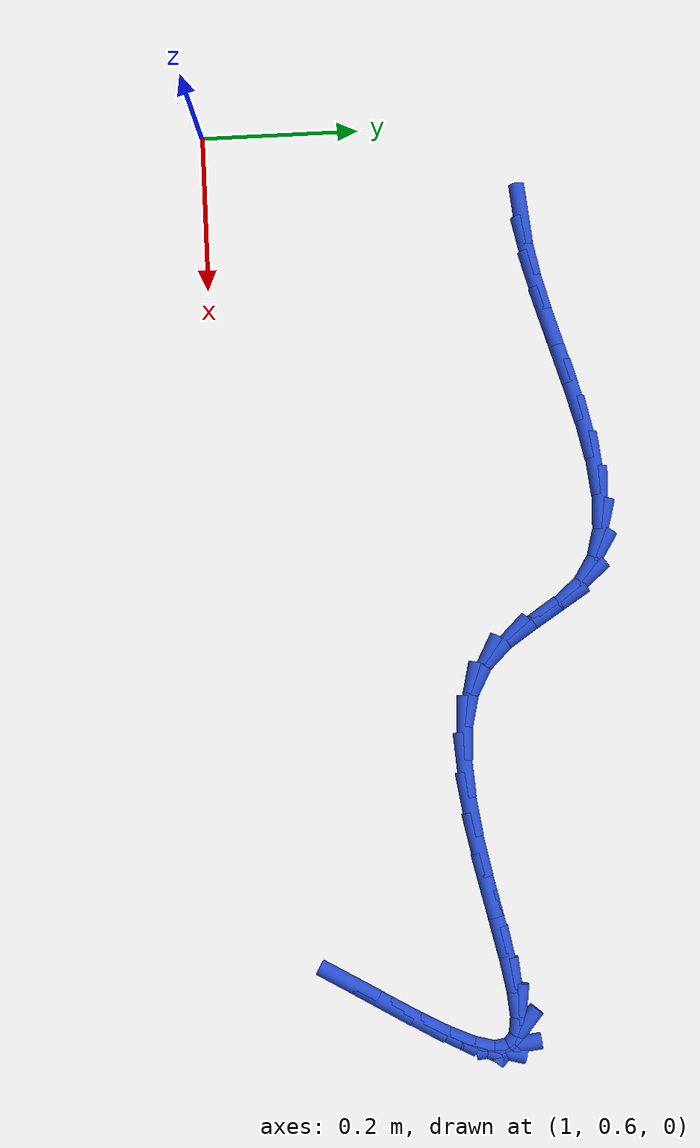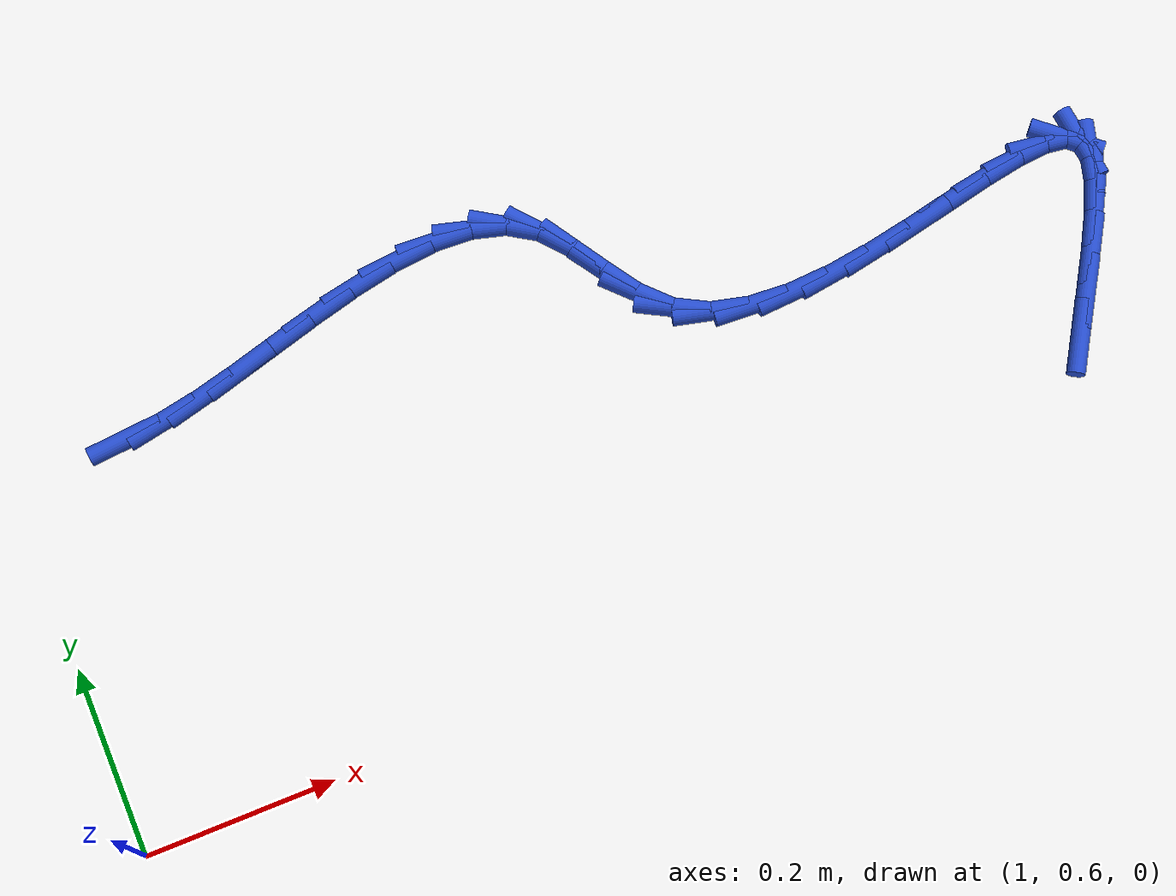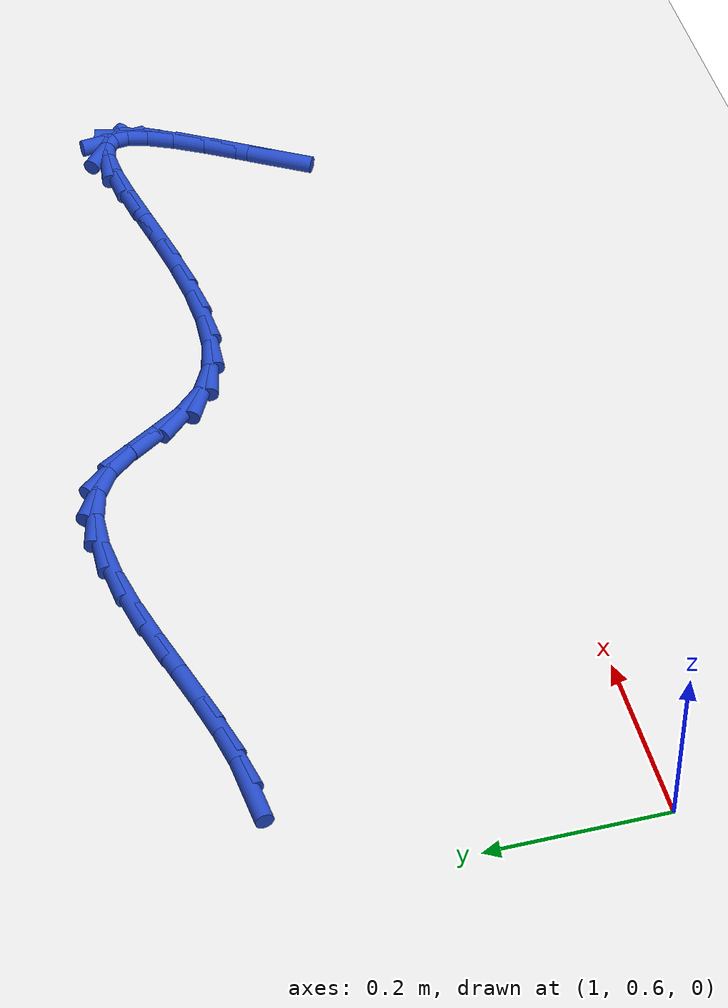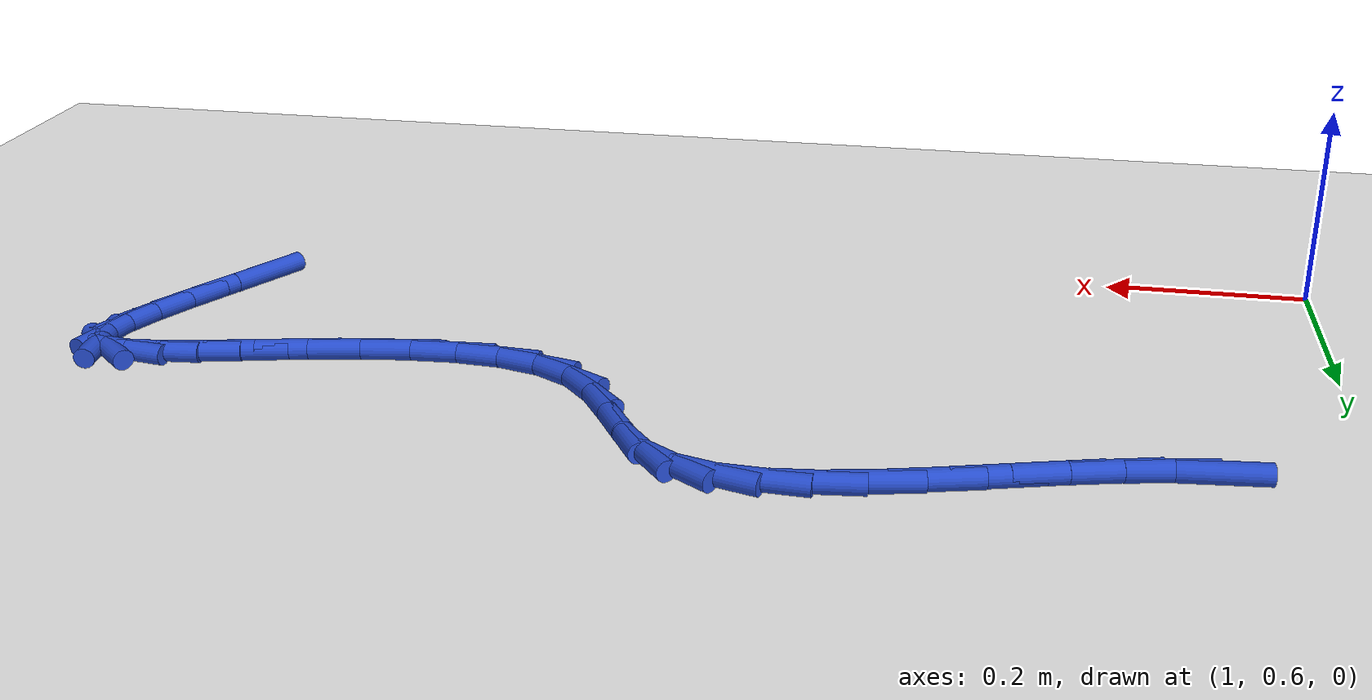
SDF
<sdf version="1.6">
 <world name="default">
  <model name="ground_plane">
   <static>1</static>
   <link name="link">
    <collision name="collision">
     <geometry><plane><normal>0 0 1</normal><size>100 100</size></plane></geometry>
     <surface><friction><ode><mu>100</mu><mu2>50</mu2></ode></friction></surface>
    </collision>
    <visual name="visual">
     <cast_shadows>0</cast_shadows>
     <geometry><plane><normal>0 0 1</normal><size>100 100</size></plane></geometry>
     <material>
      <script><uri>file://media/materials/scripts/gazebo.material</uri><name>Gazebo/WhiteGlow</name></script>
     </material>
    </visual>
   </link>
  </model>
  <model name="line">
   <link name="link_49">
    <pose>1.1250868154698648 1.0018275350249255 0.01 0 1.57 0.0902517305781408</pose>
    <collision name="collision">
     <geometry><cylinder><radius>0.01</radius><length>0.08</length></cylinder></geometry>
    </collision>
    <visual name="visual">
     <material>
      <script><name>Gazebo/Blue</name><uri>file://media/materials/scripts/gazebo.material</uri></script>
     </material>
     <geometry><cylinder><radius>0.01</radius><length>0.08</length></cylinder></geometry>
    </visual>
   </link>
   <link name="link_50">
    <pose>1.1665355438896647 1.0055785444891976 0.01 0 1.57 0.19057502289999953</pose>
    <collision name="collision">
     <geometry><cylinder><radius>0.01</radius><length>0.08</length></cylinder></geometry>
    </collision>
    <visual name="visual">
     <material>
      <script><name>Gazebo/Blue</name><uri>file://media/materials/scripts/gazebo.material</uri></script>
     </material>
     <geometry><cylinder><radius>0.01</radius><length>0.08</length></cylinder></geometry>
    </visual>
   </link>
   <link name="link_51">
    <pose>1.2111606601448308 1.0141874521095293 0.01 0 1.57 0.2484115049144183</pose>
    <collision name="collision">
     <geometry><cylinder><radius>0.01</radius><length>0.08</length></cylinder></geometry>
    </collision>
    <visual name="visual">
     <material>
      <script><name>Gazebo/Blue</name><uri>file://media/materials/scripts/gazebo.material</uri></script>
     </material>
     <geometry><cylinder><radius>0.01</radius><length>0.08</length></cylinder></geometry>
    </visual>
   </link>
   <link name="link_52">
    <pose>1.258002972986778 1.0260690301350635 0.01 0 1.57 0.27495344594959714</pose>
    <collision name="collision">
     <geometry><cylinder><radius>0.01</radius><length>0.08</length></cylinder></geometry>
    </collision>
    <visual name="visual">
     <material>
      <script><name>Gazebo/Blue</name><uri>file://media/materials/scripts/gazebo.material</uri></script>
     </material>
     <geometry><cylinder><radius>0.01</radius><length>0.08</length></cylinder></geometry>
    </visual>
   </link>
   <link name="link_53">
    <pose>1.3061032911669226 1.0396380508149439 0.01 0 1.57 0.27529637345718416</pose>
    <collision name="collision">
     <geometry><cylinder><radius>0.01</radius><length>0.08</length></cylinder></geometry>
    </collision>
    <visual name="visual">
     <material>
      <script><name>Gazebo/Blue</name><uri>file://media/materials/scripts/gazebo.material</uri></script>
     </material>
     <geometry><cylinder><radius>0.01</radius><length>0.08</length></cylinder></geometry>
    </visual>
   </link>
   <link name="link_54">
    <pose>1.3545024234366798 1.053309286398314 0.01 0 1.57 0.249970842008268</pose>
    <collision name="collision">
     <geometry><cylinder><radius>0.01</radius><length>0.08</length></cylinder></geometry>
    </collision>
    <visual name="visual">
     <material>
      <script><name>Gazebo/Blue</name><uri>file://media/materials/scripts/gazebo.material</uri></script>
     </material>
     <geometry><cylinder><radius>0.01</radius><length>0.08</length></cylinder></geometry>
    </visual>
   </link>
   <link name="link_55">
    <pose>1.4022411785474655 1.065497509134317 0.01 0 1.57 0.19522934906371991</pose>
    <collision name="collision">
     <geometry><cylinder><radius>0.01</radius><length>0.08</length></cylinder></geometry>
    </collision>
    <visual name="visual">
     <material>
      <script><name>Gazebo/Blue</name><uri>file://media/materials/scripts/gazebo.material</uri></script>
     </material>
     <geometry><cylinder><radius>0.01</radius><length>0.08</length></cylinder></geometry>
    </visual>
   </link>
   <link name="link_56">
    <pose>1.4483603652506947 1.0746174912720963 0.01 0 1.57 0.10222555881255425</pose>
    <collision name="collision">
     <geometry><cylinder><radius>0.01</radius><length>0.08</length></cylinder></geometry>
    </collision>
    <visual name="visual">
     <material>
      <script><name>Gazebo/Blue</name><uri>file://media/materials/scripts/gazebo.material</uri></script>
     </material>
     <geometry><cylinder><radius>0.01</radius><length>0.08</length></cylinder></geometry>
    </visual>
   </link>
   <link name="link_57">
    <pose>1.4919007922977832 1.0790840050607955 0.01 0 1.57 -0.04427286642482377</pose>
    <collision name="collision">
     <geometry><cylinder><radius>0.01</radius><length>0.08</length></cylinder></geometry>
    </collision>
    <visual name="visual">
     <material>
      <script><name>Gazebo/Blue</name><uri>file://media/materials/scripts/gazebo.material</uri></script>
     </material>
     <geometry><cylinder><radius>0.01</radius><length>0.08</length></cylinder></geometry>
    </visual>
   </link>
   <link name="link_58">
    <pose>1.5319032684401468 1.077311822749558 0.01 0 1.57 -0.26396555960565266</pose>
    <collision name="collision">
     <geometry><cylinder><radius>0.01</radius><length>0.08</length></cylinder></geometry>
    </collision>
    <visual name="visual">
     <material>
      <script><name>Gazebo/Blue</name><uri>file://media/materials/scripts/gazebo.material</uri></script>
     </material>
     <geometry><cylinder><radius>0.01</radius><length>0.08</length></cylinder></geometry>
    </visual>
   </link>
   <link name="link_59">
    <pose>1.567408602429201 1.0677157165875273 0.01 0 1.57 -0.5639569300416017</pose>
    <collision name="collision">
     <geometry><cylinder><radius>0.01</radius><length>0.08</length></cylinder></geometry>
    </collision>
    <visual name="visual">
     <material>
      <script><name>Gazebo/Blue</name><uri>file://media/materials/scripts/gazebo.material</uri></script>
     </material>
     <geometry><cylinder><radius>0.01</radius><length>0.08</length></cylinder></geometry>
    </visual>
   </link>
   <link name="link_60">
    <pose>1.5974576030163616 1.048710458823846 0.01 0 1.57 -0.8688384375488674</pose>
    <collision name="collision">
     <geometry><cylinder><radius>0.01</radius><length>0.08</length></cylinder></geometry>
    </collision>
    <visual name="visual">
     <material>
      <script><name>Gazebo/Blue</name><uri>file://media/materials/scripts/gazebo.material</uri></script>
     </material>
     <geometry><cylinder><radius>0.01</radius><length>0.08</length></cylinder></geometry>
    </visual>
   </link>
   <link name="link_61">
    <pose>1.621846457739842 1.0198697808917465 0.01 0 1.57 -1.0075575633804947</pose>
    <collision name="collision">
     <geometry><cylinder><radius>0.01</radius><length>0.08</length></cylinder></geometry>
    </collision>
    <visual name="visual">
     <material>
      <script><name>Gazebo/Blue</name><uri>file://media/materials/scripts/gazebo.material</uri></script>
     </material>
     <geometry><cylinder><radius>0.01</radius><length>0.08</length></cylinder></geometry>
    </visual>
   </link>
   <link name="link_62">
    <pose>1.6435036886910224 0.9855732784630096 0.01 0 1.57 -0.9845311564287268</pose>
    <collision name="collision">
     <geometry><cylinder><radius>0.01</radius><length>0.08</length></cylinder></geometry>
    </collision>
    <visual name="visual">
     <material>
      <script><name>Gazebo/Blue</name><uri>file://media/materials/scripts/gazebo.material</uri></script>
     </material>
     <geometry><cylinder><radius>0.01</radius><length>0.08</length></cylinder></geometry>
    </visual>
   </link>
   <link name="link_63">
    <pose>1.666169615058855 0.951446067626839 0.01 0 1.57 -0.8019436208430275</pose>
    <collision name="collision">
     <geometry><cylinder><radius>0.01</radius><length>0.08</length></cylinder></geometry>
    </collision>
    <visual name="visual">
     <material>
      <script><name>Gazebo/Blue</name><uri>file://media/materials/scripts/gazebo.material</uri></script>
     </material>
     <geometry><cylinder><radius>0.01</radius><length>0.08</length></cylinder></geometry>
    </visual>
   </link>
   <link name="link_64">
    <pose>1.6935825939955085 0.9231106213152334 0.01 0 1.57 -0.49427795770208377</pose>
    <collision name="collision">
     <geometry><cylinder><radius>0.01</radius><length>0.08</length></cylinder></geometry>
    </collision>
    <visual name="visual">
     <material>
      <script><name>Gazebo/Blue</name><uri>file://media/materials/scripts/gazebo.material</uri></script>
     </material>
     <geometry><cylinder><radius>0.01</radius><length>0.08</length></cylinder></geometry>
    </visual>
   </link>
   <link name="link_65">
    <pose>1.7281956923925312 0.9044577680749949 0.01 0 1.57 -0.23584991319914753</pose>
    <collision name="collision">
     <geometry><cylinder><radius>0.01</radius><length>0.08</length></cylinder></geometry>
    </collision>
    <visual name="visual">
     <material>
      <script><name>Gazebo/Blue</name><uri>file://media/materials/scripts/gazebo.material</uri></script>
     </material>
     <geometry><cylinder><radius>0.01</radius><length>0.08</length></cylinder></geometry>
    </visual>
   </link>
   <link name="link_66">
    <pose>1.7689606237220714 0.8946610370420068 0.01 0 1.57 -0.05654275098243486</pose>
    <collision name="collision">
     <geometry><cylinder><radius>0.01</radius><length>0.08</length></cylinder></geometry>
    </collision>
    <visual name="visual">
     <material>
      <script><name>Gazebo/Blue</name><uri>file://media/materials/scripts/gazebo.material</uri></script>
     </material>
     <geometry><cylinder><radius>0.01</radius><length>0.08</length></cylinder></geometry>
    </visual>
   </link>
   <link name="link_67">
    <pose>1.8142384409083525 0.8920981728879662 0.01 0 1.57 0.06323098976073235</pose>
    <collision name="collision">
     <geometry><cylinder><radius>0.01</radius><length>0.08</length></cylinder></geometry>
    </collision>
    <visual name="visual">
     <material>
      <script><name>Gazebo/Blue</name><uri>file://media/materials/scripts/gazebo.material</uri></script>
     </material>
     <geometry><cylinder><radius>0.01</radius><length>0.08</length></cylinder></geometry>
    </visual>
   </link>
   <link name="link_68">
    <pose>1.8623901968755974 0.895146920284571 0.01 0 1.57 0.1415568025229246</pose>
    <collision name="collision">
     <geometry><cylinder><radius>0.01</radius><length>0.08</length></cylinder></geometry>
    </collision>
    <visual name="visual">
     <material>
      <script><name>Gazebo/Blue</name><uri>file://media/materials/scripts/gazebo.material</uri></script>
     </material>
     <geometry><cylinder><radius>0.01</radius><length>0.08</length></cylinder></geometry>
    </visual>
   </link>
   <link name="link_69">
    <pose>1.9117769445480282 0.9021850239035176 0.01 0 1.57 0.18970156196786686</pose>
    <collision name="collision">
     <geometry><cylinder><radius>0.01</radius><length>0.08</length></cylinder></geometry>
    </collision>
    <visual name="visual">
     <material>
      <script><name>Gazebo/Blue</name><uri>file://media/materials/scripts/gazebo.material</uri></script>
     </material>
     <geometry><cylinder><radius>0.01</radius><length>0.08</length></cylinder></geometry>
    </visual>
   </link>
   <link name="link_70">
    <pose>1.9607597368498693 0.9115902284165041 0.01 0 1.57 0.2129563553523567</pose>
    <collision name="collision">
     <geometry><cylinder><radius>0.01</radius><length>0.08</length></cylinder></geometry>
    </collision>
    <visual name="visual">
     <material>
      <script><name>Gazebo/Blue</name><uri>file://media/materials/scripts/gazebo.material</uri></script>
     </material>
     <geometry><cylinder><radius>0.01</radius><length>0.08</length></cylinder></geometry>
    </visual>
   </link>
   <link name="link_71">
    <pose>2.0076996267053415 0.9217402784952268 0.01 0 1.57 0.2111609703622986</pose>
    <collision name="collision">
     <geometry><cylinder><radius>0.01</radius><length>0.08</length></cylinder></geometry>
    </collision>
    <visual name="visual">
     <material>
      <script><name>Gazebo/Blue</name><uri>file://media/materials/scripts/gazebo.material</uri></script>
     </material>
     <geometry><cylinder><radius>0.01</radius><length>0.08</length></cylinder></geometry>
    </visual>
   </link>
   <link name="link_72">
    <pose>2.050957667038669 0.9310129188113839 0.01 0 1.57 0.17666970629588838</pose>
    <collision name="collision">
     <geometry><cylinder><radius>0.01</radius><length>0.08</length></cylinder></geometry>
    </collision>
    <visual name="visual">
     <material>
      <script><name>Gazebo/Blue</name><uri>file://media/materials/scripts/gazebo.material</uri></script>
     </material>
     <geometry><cylinder><radius>0.01</radius><length>0.08</length></cylinder></geometry>
    </visual>
   </link>
   <link name="link_73">
    <pose>2.0888949107740755 0.9377858940366727 0.01 0 1.57 0.08537199707806459</pose>
    <collision name="collision">
     <geometry><cylinder><radius>0.01</radius><length>0.08</length></cylinder></geometry>
    </collision>
    <visual name="visual">
     <material>
      <script><name>Gazebo/Blue</name><uri>file://media/materials/scripts/gazebo.material</uri></script>
     </material>
     <geometry><cylinder><radius>0.01</radius><length>0.08</length></cylinder></geometry>
    </visual>
   </link>
   <link name="link_74">
    <pose>2.119872410835783 0.9404369488427903 0.01 0 1.57 -0.13734631011938914</pose>
    <collision name="collision">
     <geometry><cylinder><radius>0.01</radius><length>0.08</length></cylinder></geometry>
    </collision>
    <visual name="visual">
     <material>
      <script><name>Gazebo/Blue</name><uri>file://media/materials/scripts/gazebo.material</uri></script>
     </material>
     <geometry><cylinder><radius>0.01</radius><length>0.08</length></cylinder></geometry>
    </visual>
   </link>
   <link name="link_75">
    <pose>2.142251220148015 0.9373438279014338 0.01 0 1.57 -0.7052189739964236</pose>
    <collision name="collision">
     <geometry><cylinder><radius>0.01</radius><length>0.08</length></cylinder></geometry>
    </collision>
    <visual name="visual">
     <material>
      <script><name>Gazebo/Blue</name><uri>file://media/materials/scripts/gazebo.material</uri></script>
     </material>
     <geometry><cylinder><radius>0.01</radius><length>0.08</length></cylinder></geometry>
    </visual>
   </link>
   <link name="link_76">
    <pose>2.154467777724711 0.9269444902627202 0.01 0 1.57 -1.4561961126628769</pose>
    <collision name="collision">
     <geometry><cylinder><radius>0.01</radius><length>0.08</length></cylinder></geometry>
    </collision>
    <visual name="visual">
     <material>
      <script><name>Gazebo/Blue</name><uri>file://media/materials/scripts/gazebo.material</uri></script>
     </material>
     <geometry><cylinder><radius>0.01</radius><length>0.08</length></cylinder></geometry>
    </visual>
   </link>
   <link name="link_77">
    <pose>2.1565401516976164 0.9089402157641203 0.01 0 1.57 1.3115790739967352</pose>
    <collision name="collision">
     <geometry><cylinder><radius>0.01</radius><length>0.08</length></cylinder></geometry>
    </collision>
    <visual name="visual">
     <material>
      <script><name>Gazebo/Blue</name><uri>file://media/materials/scripts/gazebo.material</uri></script>
     </material>
     <geometry><cylinder><radius>0.01</radius><length>0.08</length></cylinder></geometry>
    </visual>
   </link>
   <link name="link_78">
    <pose>2.149987812498421 0.8842315241371852 0.01 0 1.57 1.150978818763394</pose>
    <collision name="collision">
     <geometry><cylinder><radius>0.01</radius><length>0.08</length></cylinder></geometry>
    </collision>
    <visual name="visual">
     <material>
      <script><name>Gazebo/Blue</name><uri>file://media/materials/scripts/gazebo.material</uri></script>
     </material>
     <geometry><cylinder><radius>0.01</radius><length>0.08</length></cylinder></geometry>
    </visual>
   </link>
   <link name="link_79">
    <pose>2.1363895576536014 0.8537663224252269 0.01 0 1.57 1.0752786275189683</pose>
    <collision name="collision">
     <geometry><cylinder><radius>0.01</radius><length>0.08</length></cylinder></geometry>
    </collision>
    <visual name="visual">
     <material>
      <script><name>Gazebo/Blue</name><uri>file://media/materials/scripts/gazebo.material</uri></script>
     </material>
     <geometry><cylinder><radius>0.01</radius><length>0.08</length></cylinder></geometry>
    </visual>
   </link>
   <link name="link_80">
    <pose>2.1173241846896342 0.8184925176715573 0.01 0 1.57 1.0403375554508574</pose>
    <collision name="collision">
     <geometry><cylinder><radius>0.01</radius><length>0.08</length></cylinder></geometry>
    </collision>
    <visual name="visual">
     <material>
      <script><name>Gazebo/Blue</name><uri>file://media/materials/scripts/gazebo.material</uri></script>
     </material>
     <geometry><cylinder><radius>0.01</radius><length>0.08</length></cylinder></geometry>
    </visual>
   </link>
   <link name="link_81">
    <pose>2.094370491132997 0.7793580169194887 0.01 0 1.57 1.0297677423459055</pose>
    <collision name="collision">
     <geometry><cylinder><radius>0.01</radius><length>0.08</length></cylinder></geometry>
    </collision>
    <visual name="visual">
     <material>
      <script><name>Gazebo/Blue</name><uri>file://media/materials/scripts/gazebo.material</uri></script>
     </material>
     <geometry><cylinder><radius>0.01</radius><length>0.08</length></cylinder></geometry>
    </visual>
   </link>
   <link name="link_82">
    <pose>2.069107274510165 0.7373107272123332 0.01 0 1.57 1.0373113061208428</pose>
    <collision name="collision">
     <geometry><cylinder><radius>0.01</radius><length>0.08</length></cylinder></geometry>
    </collision>
    <visual name="visual">
     <material>
      <script><name>Gazebo/Blue</name><uri>file://media/materials/scripts/gazebo.material</uri></script>
     </material>
     <geometry><cylinder><radius>0.01</radius><length>0.08</length></cylinder></geometry>
    </visual>
   </link>
  </model>
 </world>
</sdf>
